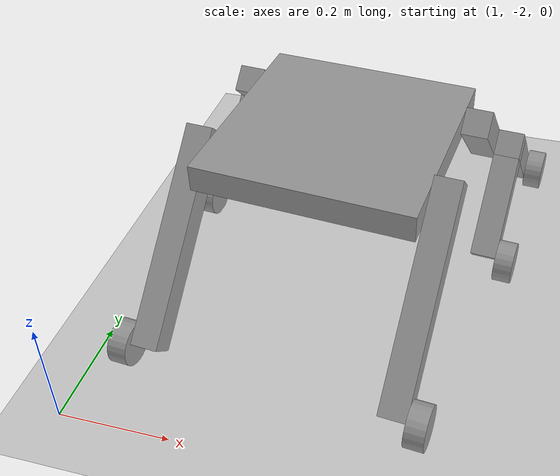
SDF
<sdf version="1.6">
 <world name="default">
  <model name="ground_plane">
   <static>1</static>
   <link name="link">
    <collision name="collision">
     <geometry><plane><normal>0 0 1</normal><size>100 100</size></plane></geometry>
     <surface><friction><ode><mu>100</mu><mu2>50</mu2></ode></friction></surface>
    </collision>
    <visual name="visual">
     <cast_shadows>0</cast_shadows>
     <geometry><plane><normal>0 0 1</normal><size>100 100</size></plane></geometry>
     <material>
      <script><uri>file://media/materials/scripts/gazebo.material</uri><name>Gazebo/Grey</name></script>
     </material>
    </visual>
   </link>
  </model>
  <model name="robot_1_0">
   <link name="link_0_clone">
    <inertial>
     <mass>1</mass>
     <inertia>
      <ixx>0.166667</ixx>
      <ixy>0</ixy>
      <ixz>0</ixz>
      <iyy>0.166667</iyy>
      <iyz>0</iyz>
      <izz>0.166667</izz>
     </inertia>
    </inertial>
    <pose>-0.152134 0.868305 0 0 -0 0</pose>
    <visual name="visual">
     <geometry><box><size>0.4 0.4 0.05</size></box></geometry>
     <material>
      <lighting>1</lighting>
      <script><uri>file://media/materials/scripts/gazebo.material</uri><name>Gazebo/Grey</name></script>
      <shader type="vertex"><normal_map>__default__</normal_map></shader>
      <ambient>0.3 0.3 0.3 1</ambient>
      <diffuse>0.7 0.7 0.7 1</diffuse>
      <specular>0.01 0.01 0.01 1</specular>
      <emissive>0 0 0 1</emissive>
     </material>
    </visual>
    <collision name="collision">
     <geometry><box><size>0.4 0.4 0.05</size></box></geometry>
     <surface>
      <friction>
       <ode><mu>1</mu><mu2>1</mu2><fdir1>0 0 0</fdir1><slip1>0</slip1><slip2>0</slip2></ode>
       <torsional>
        <coefficient>1</coefficient>
        <patch_radius>0</patch_radius>
        <surface_radius>0</surface_radius>
        <use_patch_radius>1</use_patch_radius>
        <ode><slip>0</slip></ode>
       </torsional>
      </friction>
      <bounce><restitution_coefficient>0</restitution_coefficient><threshold>1e+06</threshold></bounce>
      <contact>
       <collide_without_contact>0</collide_without_contact>
       <collide_without_contact_bitmask>1</collide_without_contact_bitmask>
       <collide_bitmask>1</collide_bitmask>
       <ode>
        <soft_cfm>0</soft_cfm>
        <soft_erp>0.2</soft_erp>
        <kp>1e+13</kp>
        <kd>1</kd>
        <max_vel>0.01</max_vel>
        <min_depth>0</min_depth>
       </ode>
       <bullet>
        <split_impulse>1</split_impulse>
        <split_impulse_penetration_threshold>-0.01</split_impulse_penetration_threshold>
        <soft_cfm>0</soft_cfm>
        <soft_erp>0.2</soft_erp>
        <kp>1e+13</kp>
        <kd>1</kd>
       </bullet>
      </contact>
     </surface>
    </collision>
   </link>
   <link name="link_0_clone_0">
    <inertial>
     <mass>1</mass>
     <inertia><ixx>0.145833</ixx><ixy>0</ixy><ixz>0</ixz><iyy>0.145833</iyy><iyz>0</iyz><izz>0.125</izz></inertia>
    </inertial>
    <pose>-0.469634 1.26045 -0.272118 -1.565 1.55233 -1.56544</pose>
    <visual name="visual">
     <geometry><cylinder><radius>0.04</radius><length>0.035</length></cylinder></geometry>
     <material>
      <lighting>1</lighting>
      <script><uri>file://media/materials/scripts/gazebo.material</uri><name>Gazebo/Grey</name></script>
      <shader type="vertex"><normal_map>__default__</normal_map></shader>
      <ambient>0.3 0.3 0.3 1</ambient>
      <diffuse>0.7 0.7 0.7 1</diffuse>
      <specular>0.01 0.01 0.01 1</specular>
      <emissive>0 0 0 1</emissive>
     </material>
    </visual>
    <collision name="collision">
     <geometry><cylinder><radius>0.04</radius><length>0.035</length></cylinder></geometry>
     <surface>
      <friction>
       <ode><mu>1</mu><mu2>1</mu2><fdir1>0 0 0</fdir1><slip1>0</slip1><slip2>0</slip2></ode>
       <torsional>
        <coefficient>1</coefficient>
        <patch_radius>0</patch_radius>
        <surface_radius>0</surface_radius>
        <use_patch_radius>1</use_patch_radius>
        <ode><slip>0</slip></ode>
       </torsional>
      </friction>
      <bounce><restitution_coefficient>0</restitution_coefficient><threshold>1e+06</threshold></bounce>
      <contact>
       <collide_without_contact>0</collide_without_contact>
       <collide_without_contact_bitmask>1</collide_without_contact_bitmask>
       <collide_bitmask>1</collide_bitmask>
       <ode>
        <soft_cfm>0</soft_cfm>
        <soft_erp>0.2</soft_erp>
        <kp>1e+13</kp>
        <kd>1</kd>
        <max_vel>0.01</max_vel>
        <min_depth>0</min_depth>
       </ode>
       <bullet>
        <split_impulse>1</split_impulse>
        <split_impulse_penetration_threshold>-0.01</split_impulse_penetration_threshold>
        <soft_cfm>0</soft_cfm>
        <soft_erp>0.2</soft_erp>
        <kp>1e+13</kp>
        <kd>1</kd>
       </bullet>
      </contact>
     </surface>
    </collision>
   </link>
   <link name="link_0_clone_1">
    <inertial>
     <mass>1</mass>
     <inertia><ixx>0.145833</ixx><ixy>0</ixy><ixz>0</ixz><iyy>0.145833</iyy><iyz>0</iyz><izz>0.125</izz></inertia>
    </inertial>
    <pose>-0.469634 0.942191 -0.272047 -1.565 1.55233 -1.56544</pose>
    <visual name="visual">
     <geometry><cylinder><radius>0.04</radius><length>0.035</length></cylinder></geometry>
     <material>
      <lighting>1</lighting>
      <script><uri>file://media/materials/scripts/gazebo.material</uri><name>Gazebo/Grey</name></script>
      <shader type="vertex"><normal_map>__default__</normal_map></shader>
      <ambient>0.3 0.3 0.3 1</ambient>
      <diffuse>0.7 0.7 0.7 1</diffuse>
      <specular>0.01 0.01 0.01 1</specular>
      <emissive>0 0 0 1</emissive>
     </material>
    </visual>
    <collision name="collision">
     <geometry><cylinder><radius>0.04</radius><length>0.035</length></cylinder></geometry>
     <surface>
      <friction>
       <ode><mu>1</mu><mu2>1</mu2><fdir1>0 0 0</fdir1><slip1>0</slip1><slip2>0</slip2></ode>
       <torsional>
        <coefficient>1</coefficient>
        <patch_radius>0</patch_radius>
        <surface_radius>0</surface_radius>
        <use_patch_radius>1</use_patch_radius>
        <ode><slip>0</slip></ode>
       </torsional>
      </friction>
      <bounce><restitution_coefficient>0</restitution_coefficient><threshold>1e+06</threshold></bounce>
      <contact>
       <collide_without_contact>0</collide_without_contact>
       <collide_without_contact_bitmask>1</collide_without_contact_bitmask>
       <collide_bitmask>1</collide_bitmask>
       <ode>
        <soft_cfm>0</soft_cfm>
        <soft_erp>0.2</soft_erp>
        <kp>1e+13</kp>
        <kd>1</kd>
        <max_vel>0.01</max_vel>
        <min_depth>0</min_depth>
       </ode>
       <bullet>
        <split_impulse>1</split_impulse>
        <split_impulse_penetration_threshold>-0.01</split_impulse_penetration_threshold>
        <soft_cfm>0</soft_cfm>
        <soft_erp>0.2</soft_erp>
        <kp>1e+13</kp>
        <kd>1</kd>
       </bullet>
      </contact>
     </surface>
    </collision>
   </link>
   <link name="link_0_clone_2">
    <inertial>
     <mass>1</mass>
     <inertia><ixx>0.145833</ixx><ixy>0</ixy><ixz>0</ixz><iyy>0.145833</iyy><iyz>0</iyz><izz>0.125</izz></inertia>
    </inertial>
    <pose>0.165366 1.26045 -0.272118 -1.56501 1.55233 -1.56545</pose>
    <visual name="visual">
     <geometry><cylinder><radius>0.04</radius><length>0.035</length></cylinder></geometry>
     <material>
      <lighting>1</lighting>
      <script><uri>file://media/materials/scripts/gazebo.material</uri><name>Gazebo/Grey</name></script>
      <shader type="vertex"><normal_map>__default__</normal_map></shader>
      <ambient>0.3 0.3 0.3 1</ambient>
      <diffuse>0.7 0.7 0.7 1</diffuse>
      <specular>0.01 0.01 0.01 1</specular>
      <emissive>0 0 0 1</emissive>
     </material>
    </visual>
    <collision name="collision">
     <geometry><cylinder><radius>0.04</radius><length>0.035</length></cylinder></geometry>
     <surface>
      <friction>
       <ode><mu>1</mu><mu2>1</mu2><fdir1>0 0 0</fdir1><slip1>0</slip1><slip2>0</slip2></ode>
       <torsional>
        <coefficient>1</coefficient>
        <patch_radius>0</patch_radius>
        <surface_radius>0</surface_radius>
        <use_patch_radius>1</use_patch_radius>
        <ode><slip>0</slip></ode>
       </torsional>
      </friction>
      <bounce><restitution_coefficient>0</restitution_coefficient><threshold>1e+06</threshold></bounce>
      <contact>
       <collide_without_contact>0</collide_without_contact>
       <collide_without_contact_bitmask>1</collide_without_contact_bitmask>
       <collide_bitmask>1</collide_bitmask>
       <ode>
        <soft_cfm>0</soft_cfm>
        <soft_erp>0.2</soft_erp>
        <kp>1e+13</kp>
        <kd>1</kd>
        <max_vel>0.01</max_vel>
        <min_depth>0</min_depth>
       </ode>
       <bullet>
        <split_impulse>1</split_impulse>
        <split_impulse_penetration_threshold>-0.01</split_impulse_penetration_threshold>
        <soft_cfm>0</soft_cfm>
        <soft_erp>0.2</soft_erp>
        <kp>1e+13</kp>
        <kd>1</kd>
       </bullet>
      </contact>
     </surface>
    </collision>
   </link>
   <link name="link_0_clone_3">
    <inertial>
     <mass>1</mass>
     <inertia><ixx>0.145833</ixx><ixy>0</ixy><ixz>0</ixz><iyy>0.145833</iyy><iyz>0</iyz><izz>0.125</izz></inertia>
    </inertial>
    <pose>-0.419634 0.501827 -0.261365 -1.565 1.55233 -1.56544</pose>
    <visual name="visual">
     <geometry><cylinder><radius>0.04</radius><length>0.035</length></cylinder></geometry>
     <material>
      <lighting>1</lighting>
      <script><uri>file://media/materials/scripts/gazebo.material</uri><name>Gazebo/Grey</name></script>
      <shader type="vertex"><normal_map>__default__</normal_map></shader>
      <ambient>0.3 0.3 0.3 1</ambient>
      <diffuse>0.7 0.7 0.7 1</diffuse>
      <specular>0.01 0.01 0.01 1</specular>
      <emissive>0 0 0 1</emissive>
     </material>
    </visual>
    <collision name="collision">
     <geometry><cylinder><radius>0.04</radius><length>0.035</length></cylinder></geometry>
     <surface>
      <friction>
       <ode><mu>1</mu><mu2>1</mu2><fdir1>0 0 0</fdir1><slip1>0</slip1><slip2>0</slip2></ode>
       <torsional>
        <coefficient>1</coefficient>
        <patch_radius>0</patch_radius>
        <surface_radius>0</surface_radius>
        <use_patch_radius>1</use_patch_radius>
        <ode><slip>0</slip></ode>
       </torsional>
      </friction>
      <bounce><restitution_coefficient>0</restitution_coefficient><threshold>1e+06</threshold></bounce>
      <contact>
       <collide_without_contact>0</collide_without_contact>
       <collide_without_contact_bitmask>1</collide_without_contact_bitmask>
       <collide_bitmask>1</collide_bitmask>
       <ode>
        <soft_cfm>0</soft_cfm>
        <soft_erp>0.2</soft_erp>
        <kp>1e+13</kp>
        <kd>1</kd>
        <max_vel>0.01</max_vel>
        <min_depth>0</min_depth>
       </ode>
       <bullet>
        <split_impulse>1</split_impulse>
        <split_impulse_penetration_threshold>-0.01</split_impulse_penetration_threshold>
        <soft_cfm>0</soft_cfm>
        <soft_erp>0.2</soft_erp>
        <kp>1e+13</kp>
        <kd>1</kd>
       </bullet>
      </contact>
     </surface>
    </collision>
   </link>
   <link name="link_0_clone_4">
    <inertial>
     <mass>1</mass>
     <inertia><ixx>0.145833</ixx><ixy>0</ixy><ixz>0</ixz><iyy>0.145833</iyy><iyz>0</iyz><izz>0.125</izz></inertia>
    </inertial>
    <pose>0.165366 0.942191 -0.272048 -1.565 1.55233 -1.56544</pose>
    <visual name="visual">
     <geometry><cylinder><radius>0.04</radius><length>0.035</length></cylinder></geometry>
     <material>
      <lighting>1</lighting>
      <script><uri>file://media/materials/scripts/gazebo.material</uri><name>Gazebo/Grey</name></script>
      <shader type="vertex"><normal_map>__default__</normal_map></shader>
      <ambient>0.3 0.3 0.3 1</ambient>
      <diffuse>0.7 0.7 0.7 1</diffuse>
      <specular>0.01 0.01 0.01 1</specular>
      <emissive>0 0 0 1</emissive>
     </material>
    </visual>
    <collision name="collision">
     <geometry><cylinder><radius>0.04</radius><length>0.035</length></cylinder></geometry>
     <surface>
      <friction>
       <ode><mu>1</mu><mu2>1</mu2><fdir1>0 0 0</fdir1><slip1>0</slip1><slip2>0</slip2></ode>
       <torsional>
        <coefficient>1</coefficient>
        <patch_radius>0</patch_radius>
        <surface_radius>0</surface_radius>
        <use_patch_radius>1</use_patch_radius>
        <ode><slip>0</slip></ode>
       </torsional>
      </friction>
      <bounce><restitution_coefficient>0</restitution_coefficient><threshold>1e+06</threshold></bounce>
      <contact>
       <collide_without_contact>0</collide_without_contact>
       <collide_without_contact_bitmask>1</collide_without_contact_bitmask>
       <collide_bitmask>1</collide_bitmask>
       <ode>
        <soft_cfm>0</soft_cfm>
        <soft_erp>0.2</soft_erp>
        <kp>1e+13</kp>
        <kd>1</kd>
        <max_vel>0.01</max_vel>
        <min_depth>0</min_depth>
       </ode>
       <bullet>
        <split_impulse>1</split_impulse>
        <split_impulse_penetration_threshold>-0.01</split_impulse_penetration_threshold>
        <soft_cfm>0</soft_cfm>
        <soft_erp>0.2</soft_erp>
        <kp>1e+13</kp>
        <kd>1</kd>
       </bullet>
      </contact>
     </surface>
    </collision>
   </link>
   <link name="link_0_clone_5">
    <inertial>
     <mass>1</mass>
     <inertia><ixx>0.145833</ixx><ixy>0</ixy><ixz>0</ixz><iyy>0.145833</iyy><iyz>0</iyz><izz>0.125</izz></inertia>
    </inertial>
    <pose>0.115366 0.501827 -0.261365 -1.565 1.55233 -1.56544</pose>
    <visual name="visual">
     <geometry><cylinder><radius>0.04</radius><length>0.035</length></cylinder></geometry>
     <material>
      <lighting>1</lighting>
      <script><uri>file://media/materials/scripts/gazebo.material</uri><name>Gazebo/Grey</name></script>
      <shader type="vertex"><normal_map>__default__</normal_map></shader>
      <ambient>0.3 0.3 0.3 1</ambient>
      <diffuse>0.7 0.7 0.7 1</diffuse>
      <specular>0.01 0.01 0.01 1</specular>
      <emissive>0 0 0 1</emissive>
     </material>
    </visual>
    <collision name="collision">
     <geometry><cylinder><radius>0.04</radius><length>0.035</length></cylinder></geometry>
     <surface>
      <friction>
       <ode><mu>1</mu><mu2>1</mu2><fdir1>0 0 0</fdir1><slip1>0</slip1><slip2>0</slip2></ode>
       <torsional>
        <coefficient>1</coefficient>
        <patch_radius>0</patch_radius>
        <surface_radius>0</surface_radius>
        <use_patch_radius>1</use_patch_radius>
        <ode><slip>0</slip></ode>
       </torsional>
      </friction>
      <bounce><restitution_coefficient>0</restitution_coefficient><threshold>1e+06</threshold></bounce>
      <contact>
       <collide_without_contact>0</collide_without_contact>
       <collide_without_contact_bitmask>1</collide_without_contact_bitmask>
       <collide_bitmask>1</collide_bitmask>
       <ode>
        <soft_cfm>0</soft_cfm>
        <soft_erp>0.2</soft_erp>
        <kp>1e+13</kp>
        <kd>1</kd>
        <max_vel>0.01</max_vel>
        <min_depth>0</min_depth>
       </ode>
       <bullet>
        <split_impulse>1</split_impulse>
        <split_impulse_penetration_threshold>-0.01</split_impulse_penetration_threshold>
        <soft_cfm>0</soft_cfm>
        <soft_erp>0.2</soft_erp>
        <kp>1e+13</kp>
        <kd>1</kd>
       </bullet>
      </contact>
     </surface>
    </collision>
   </link>
   <link name="link_1_clone">
    <inertial>
     <mass>1</mass>
     <inertia>
      <ixx>0.166667</ixx>
      <ixy>0</ixy>
      <ixz>0</ixz>
      <iyy>0.166667</iyy>
      <iyz>0</iyz>
      <izz>0.166667</izz>
     </inertia>
    </inertial>
    <pose>0.072866 0.643305 -0.12 0.785 -0 0</pose>
    <visual name="visual">
     <geometry><box><size>0.05 0.4 0.05</size></box></geometry>
     <material>
      <lighting>1</lighting>
      <script><uri>file://media/materials/scripts/gazebo.material</uri><name>Gazebo/Grey</name></script>
      <shader type="vertex"><normal_map>__default__</normal_map></shader>
      <ambient>0.3 0.3 0.3 1</ambient>
      <diffuse>0.7 0.7 0.7 1</diffuse>
      <specular>0.01 0.01 0.01 1</specular>
      <emissive>0 0 0 1</emissive>
     </material>
    </visual>
    <collision name="collision">
     <geometry><box><size>0.05 0.4 0.05</size></box></geometry>
     <surface>
      <friction>
       <ode><mu>1</mu><mu2>1</mu2><fdir1>0 0 0</fdir1><slip1>0</slip1><slip2>0</slip2></ode>
       <torsional>
        <coefficient>1</coefficient>
        <patch_radius>0</patch_radius>
        <surface_radius>0</surface_radius>
        <use_patch_radius>1</use_patch_radius>
        <ode><slip>0</slip></ode>
       </torsional>
      </friction>
      <bounce><restitution_coefficient>0</restitution_coefficient><threshold>1e+06</threshold></bounce>
      <contact>
       <collide_without_contact>0</collide_without_contact>
       <collide_without_contact_bitmask>1</collide_without_contact_bitmask>
       <collide_bitmask>1</collide_bitmask>
       <ode>
        <soft_cfm>0</soft_cfm>
        <soft_erp>0.2</soft_erp>
        <kp>1e+13</kp>
        <kd>1</kd>
        <max_vel>0.01</max_vel>
        <min_depth>0</min_depth>
       </ode>
       <bullet>
        <split_impulse>1</split_impulse>
        <split_impulse_penetration_threshold>-0.01</split_impulse_penetration_threshold>
        <soft_cfm>0</soft_cfm>
        <soft_erp>0.2</soft_erp>
        <kp>1e+13</kp>
        <kd>1</kd>
       </bullet>
      </contact>
     </surface>
    </collision>
   </link>
   <link name="link_1_clone_0">
    <inertial>
     <mass>1</mass>
     <inertia>
      <ixx>0.166667</ixx>
      <ixy>0</ixy>
      <ixz>0</ixz>
      <iyy>0.166667</iyy>
      <iyz>0</iyz>
      <izz>0.166667</izz>
     </inertia>
    </inertial>
    <pose>-0.377134 0.643305 -0.12 0.785 -0 0</pose>
    <visual name="visual">
     <geometry><box><size>0.05 0.4 0.05</size></box></geometry>
     <material>
      <lighting>1</lighting>
      <script><uri>file://media/materials/scripts/gazebo.material</uri><name>Gazebo/Grey</name></script>
      <shader type="vertex"><normal_map>__default__</normal_map></shader>
      <ambient>0.3 0.3 0.3 1</ambient>
      <diffuse>0.7 0.7 0.7 1</diffuse>
      <specular>0.01 0.01 0.01 1</specular>
      <emissive>0 0 0 1</emissive>
     </material>
    </visual>
    <collision name="collision">
     <geometry><box><size>0.05 0.4 0.05</size></box></geometry>
     <surface>
      <friction>
       <ode><mu>1</mu><mu2>1</mu2><fdir1>0 0 0</fdir1><slip1>0</slip1><slip2>0</slip2></ode>
       <torsional>
        <coefficient>1</coefficient>
        <patch_radius>0</patch_radius>
        <surface_radius>0</surface_radius>
        <use_patch_radius>1</use_patch_radius>
        <ode><slip>0</slip></ode>
       </torsional>
      </friction>
      <bounce><restitution_coefficient>0</restitution_coefficient><threshold>1e+06</threshold></bounce>
      <contact>
       <collide_without_contact>0</collide_without_contact>
       <collide_without_contact_bitmask>1</collide_without_contact_bitmask>
       <collide_bitmask>1</collide_bitmask>
       <ode>
        <soft_cfm>0</soft_cfm>
        <soft_erp>0.2</soft_erp>
        <kp>1e+13</kp>
        <kd>1</kd>
        <max_vel>0.01</max_vel>
        <min_depth>0</min_depth>
       </ode>
       <bullet>
        <split_impulse>1</split_impulse>
        <split_impulse_penetration_threshold>-0.01</split_impulse_penetration_threshold>
        <soft_cfm>0</soft_cfm>
        <soft_erp>0.2</soft_erp>
        <kp>1e+13</kp>
        <kd>1</kd>
       </bullet>
      </contact>
     </surface>
    </collision>
   </link>
   <link name="link_1_clone_1">
    <inertial>
     <mass>1</mass>
     <inertia>
      <ixx>0.166667</ixx>
      <ixy>0</ixy>
      <ixz>0</ixz>
      <iyy>0.166667</iyy>
      <iyz>0</iyz>
      <izz>0.166667</izz>
     </inertia>
    </inertial>
    <pose>-0.427134 1.01293 -0.201365 0.785 -0 0</pose>
    <visual name="visual">
     <geometry><box><size>0.05 0.2 0.05</size></box></geometry>
     <material>
      <lighting>1</lighting>
      <script><uri>file://media/materials/scripts/gazebo.material</uri><name>Gazebo/Grey</name></script>
      <shader type="vertex"><normal_map>__default__</normal_map></shader>
      <ambient>0.3 0.3 0.3 1</ambient>
      <diffuse>0.7 0.7 0.7 1</diffuse>
      <specular>0.01 0.01 0.01 1</specular>
      <emissive>0 0 0 1</emissive>
     </material>
    </visual>
    <collision name="collision">
     <geometry><box><size>0.05 0.2 0.05</size></box></geometry>
     <surface>
      <friction>
       <ode><mu>1</mu><mu2>1</mu2><fdir1>0 0 0</fdir1><slip1>0</slip1><slip2>0</slip2></ode>
       <torsional>
        <coefficient>1</coefficient>
        <patch_radius>0</patch_radius>
        <surface_radius>0</surface_radius>
        <use_patch_radius>1</use_patch_radius>
        <ode><slip>0</slip></ode>
       </torsional>
      </friction>
      <bounce><restitution_coefficient>0</restitution_coefficient><threshold>1e+06</threshold></bounce>
      <contact>
       <collide_without_contact>0</collide_without_contact>
       <collide_without_contact_bitmask>1</collide_without_contact_bitmask>
       <collide_bitmask>1</collide_bitmask>
       <ode>
        <soft_cfm>0</soft_cfm>
        <soft_erp>0.2</soft_erp>
        <kp>1e+13</kp>
        <kd>1</kd>
        <max_vel>0.01</max_vel>
        <min_depth>0</min_depth>
       </ode>
       <bullet>
        <split_impulse>1</split_impulse>
        <split_impulse_penetration_threshold>-0.01</split_impulse_penetration_threshold>
        <soft_cfm>0</soft_cfm>
        <soft_erp>0.2</soft_erp>
        <kp>1e+13</kp>
        <kd>1</kd>
       </bullet>
      </contact>
     </surface>
    </collision>
   </link>
   <link name="link_1_clone_2">
    <inertial>
     <mass>1</mass>
     <inertia>
      <ixx>0.166667</ixx>
      <ixy>0</ixy>
      <ixz>0</ixz>
      <iyy>0.166667</iyy>
      <iyz>0</iyz>
      <izz>0.166667</izz>
     </inertia>
    </inertial>
    <pose>0.122866 1.01293 -0.201365 0.785 -0 0</pose>
    <visual name="visual">
     <geometry><box><size>0.05 0.2 0.05</size></box></geometry>
     <material>
      <lighting>1</lighting>
      <script><uri>file://media/materials/scripts/gazebo.material</uri><name>Gazebo/Grey</name></script>
      <shader type="vertex"><normal_map>__default__</normal_map></shader>
      <ambient>0.3 0.3 0.3 1</ambient>
      <diffuse>0.7 0.7 0.7 1</diffuse>
      <specular>0.01 0.01 0.01 1</specular>
      <emissive>0 0 0 1</emissive>
     </material>
    </visual>
    <collision name="collision">
     <geometry><box><size>0.05 0.2 0.05</size></box></geometry>
     <surface>
      <friction>
       <ode><mu>1</mu><mu2>1</mu2><fdir1>0 0 0</fdir1><slip1>0</slip1><slip2>0</slip2></ode>
       <torsional>
        <coefficient>1</coefficient>
        <patch_radius>0</patch_radius>
        <surface_radius>0</surface_radius>
        <use_patch_radius>1</use_patch_radius>
        <ode><slip>0</slip></ode>
       </torsional>
      </friction>
      <bounce><restitution_coefficient>0</restitution_coefficient><threshold>1e+06</threshold></bounce>
      <contact>
       <collide_without_contact>0</collide_without_contact>
       <collide_without_contact_bitmask>1</collide_without_contact_bitmask>
       <collide_bitmask>1</collide_bitmask>
       <ode>
        <soft_cfm>0</soft_cfm>
        <soft_erp>0.2</soft_erp>
        <kp>1e+13</kp>
        <kd>1</kd>
        <max_vel>0.01</max_vel>
        <min_depth>0</min_depth>
       </ode>
       <bullet>
        <split_impulse>1</split_impulse>
        <split_impulse_penetration_threshold>-0.01</split_impulse_penetration_threshold>
        <soft_cfm>0</soft_cfm>
        <soft_erp>0.2</soft_erp>
        <kp>1e+13</kp>
        <kd>1</kd>
       </bullet>
      </contact>
     </surface>
    </collision>
   </link>
   <link name="link_1_clone_3">
    <inertial>
     <mass>1</mass>
     <inertia>
      <ixx>0.166667</ixx>
      <ixy>0</ixy>
      <ixz>0</ixz>
      <iyy>0.166667</iyy>
      <iyz>0</iyz>
      <izz>0.166667</izz>
     </inertia>
    </inertial>
    <pose>-0.427134 1.18971 -0.201435 -0.785 -0 -0</pose>
    <visual name="visual">
     <geometry><box><size>0.05 0.2 0.05</size></box></geometry>
     <material>
      <lighting>1</lighting>
      <script><uri>file://media/materials/scripts/gazebo.material</uri><name>Gazebo/Grey</name></script>
      <shader type="vertex"><normal_map>__default__</normal_map></shader>
      <ambient>0.3 0.3 0.3 1</ambient>
      <diffuse>0.7 0.7 0.7 1</diffuse>
      <specular>0.01 0.01 0.01 1</specular>
      <emissive>0 0 0 1</emissive>
     </material>
    </visual>
    <collision name="collision">
     <geometry><box><size>0.05 0.2 0.05</size></box></geometry>
     <surface>
      <friction>
       <ode><mu>1</mu><mu2>1</mu2><fdir1>0 0 0</fdir1><slip1>0</slip1><slip2>0</slip2></ode>
       <torsional>
        <coefficient>1</coefficient>
        <patch_radius>0</patch_radius>
        <surface_radius>0</surface_radius>
        <use_patch_radius>1</use_patch_radius>
        <ode><slip>0</slip></ode>
       </torsional>
      </friction>
      <bounce><restitution_coefficient>0</restitution_coefficient><threshold>1e+06</threshold></bounce>
      <contact>
       <collide_without_contact>0</collide_without_contact>
       <collide_without_contact_bitmask>1</collide_without_contact_bitmask>
       <collide_bitmask>1</collide_bitmask>
       <ode>
        <soft_cfm>0</soft_cfm>
        <soft_erp>0.2</soft_erp>
        <kp>1e+13</kp>
        <kd>1</kd>
        <max_vel>0.01</max_vel>
        <min_depth>0</min_depth>
       </ode>
       <bullet>
        <split_impulse>1</split_impulse>
        <split_impulse_penetration_threshold>-0.01</split_impulse_penetration_threshold>
        <soft_cfm>0</soft_cfm>
        <soft_erp>0.2</soft_erp>
        <kp>1e+13</kp>
        <kd>1</kd>
       </bullet>
      </contact>
     </surface>
    </collision>
   </link>
   <link name="link_1_clone_3_clone">
    <inertial>
     <mass>1</mass>
     <inertia>
      <ixx>0.166667</ixx>
      <ixy>0</ixy>
      <ixz>0</ixz>
      <iyy>0.166667</iyy>
      <iyz>0</iyz>
      <izz>0.166667</izz>
     </inertia>
    </inertial>
    <pose>-0.377134 1.04831 -0.06 -0.785 -0 -0</pose>
    <visual name="visual">
     <geometry><box><size>0.05 0.2 0.05</size></box></geometry>
     <material>
      <lighting>1</lighting>
      <script><uri>file://media/materials/scripts/gazebo.material</uri><name>Gazebo/Grey</name></script>
      <shader type="vertex"><normal_map>__default__</normal_map></shader>
      <ambient>0.3 0.3 0.3 1</ambient>
      <diffuse>0.7 0.7 0.7 1</diffuse>
      <specular>0.01 0.01 0.01 1</specular>
      <emissive>0 0 0 1</emissive>
     </material>
    </visual>
    <collision name="collision">
     <geometry><box><size>0.05 0.2 0.05</size></box></geometry>
     <surface>
      <friction>
       <ode><mu>1</mu><mu2>1</mu2><fdir1>0 0 0</fdir1><slip1>0</slip1><slip2>0</slip2></ode>
       <torsional>
        <coefficient>1</coefficient>
        <patch_radius>0</patch_radius>
        <surface_radius>0</surface_radius>
        <use_patch_radius>1</use_patch_radius>
        <ode><slip>0</slip></ode>
       </torsional>
      </friction>
      <bounce><restitution_coefficient>0</restitution_coefficient><threshold>1e+06</threshold></bounce>
      <contact>
       <collide_without_contact>0</collide_without_contact>
       <collide_without_contact_bitmask>1</collide_without_contact_bitmask>
       <collide_bitmask>1</collide_bitmask>
       <ode>
        <soft_cfm>0</soft_cfm>
        <soft_erp>0.2</soft_erp>
        <kp>1e+13</kp>
        <kd>1</kd>
        <max_vel>0.01</max_vel>
        <min_depth>0</min_depth>
       </ode>
       <bullet>
        <split_impulse>1</split_impulse>
        <split_impulse_penetration_threshold>-0.01</split_impulse_penetration_threshold>
        <soft_cfm>0</soft_cfm>
        <soft_erp>0.2</soft_erp>
        <kp>1e+13</kp>
        <kd>1</kd>
       </bullet>
      </contact>
     </surface>
    </collision>
   </link>
   <link name="link_1_clone_3_clone_clone">
    <inertial>
     <mass>1</mass>
     <inertia>
      <ixx>0.166667</ixx>
      <ixy>0</ixy>
      <ixz>0</ixz>
      <iyy>0.166667</iyy>
      <iyz>0</iyz>
      <izz>0.166667</izz>
     </inertia>
    </inertial>
    <pose>0.072866 1.04831 -0.06 -0.785 -0 -0</pose>
    <visual name="visual">
     <geometry><box><size>0.05 0.2 0.05</size></box></geometry>
     <material>
      <lighting>1</lighting>
      <script><uri>file://media/materials/scripts/gazebo.material</uri><name>Gazebo/Grey</name></script>
      <shader type="vertex"><normal_map>__default__</normal_map></shader>
      <ambient>0.3 0.3 0.3 1</ambient>
      <diffuse>0.7 0.7 0.7 1</diffuse>
      <specular>0.01 0.01 0.01 1</specular>
      <emissive>0 0 0 1</emissive>
     </material>
    </visual>
    <collision name="collision">
     <geometry><box><size>0.05 0.2 0.05</size></box></geometry>
     <surface>
      <friction>
       <ode><mu>1</mu><mu2>1</mu2><fdir1>0 0 0</fdir1><slip1>0</slip1><slip2>0</slip2></ode>
       <torsional>
        <coefficient>1</coefficient>
        <patch_radius>0</patch_radius>
        <surface_radius>0</surface_radius>
        <use_patch_radius>1</use_patch_radius>
        <ode><slip>0</slip></ode>
       </torsional>
      </friction>
      <bounce><restitution_coefficient>0</restitution_coefficient><threshold>1e+06</threshold></bounce>
      <contact>
       <collide_without_contact>0</collide_without_contact>
       <collide_without_contact_bitmask>1</collide_without_contact_bitmask>
       <collide_bitmask>1</collide_bitmask>
       <ode>
        <soft_cfm>0</soft_cfm>
        <soft_erp>0.2</soft_erp>
        <kp>1e+13</kp>
        <kd>1</kd>
        <max_vel>0.01</max_vel>
        <min_depth>0</min_depth>
       </ode>
       <bullet>
        <split_impulse>1</split_impulse>
        <split_impulse_penetration_threshold>-0.01</split_impulse_penetration_threshold>
        <soft_cfm>0</soft_cfm>
        <soft_erp>0.2</soft_erp>
        <kp>1e+13</kp>
        <kd>1</kd>
       </bullet>
      </contact>
     </surface>
    </collision>
   </link>
   <link name="link_1_clone_3_clone_clone_0">
    <inertial>
     <mass>1</mass>
     <inertia>
      <ixx>0.166667</ixx>
      <ixy>0</ixy>
      <ixz>0</ixz>
      <iyy>0.166667</iyy>
      <iyz>0</iyz>
      <izz>0.166667</izz>
     </inertia>
    </inertial>
    <pose>0.122866 1.18971 -0.201435 -0.785 -0 -0</pose>
    <visual name="visual">
     <geometry><box><size>0.05 0.2 0.05</size></box></geometry>
     <material>
      <lighting>1</lighting>
      <script><uri>file://media/materials/scripts/gazebo.material</uri><name>Gazebo/Grey</name></script>
      <shader type="vertex"><normal_map>__default__</normal_map></shader>
      <ambient>0.3 0.3 0.3 1</ambient>
      <diffuse>0.7 0.7 0.7 1</diffuse>
      <specular>0.01 0.01 0.01 1</specular>
      <emissive>0 0 0 1</emissive>
     </material>
    </visual>
    <collision name="collision">
     <geometry><box><size>0.05 0.2 0.05</size></box></geometry>
     <surface>
      <friction>
       <ode><mu>1</mu><mu2>1</mu2><fdir1>0 0 0</fdir1><slip1>0</slip1><slip2>0</slip2></ode>
       <torsional>
        <coefficient>1</coefficient>
        <patch_radius>0</patch_radius>
        <surface_radius>0</surface_radius>
        <use_patch_radius>1</use_patch_radius>
        <ode><slip>0</slip></ode>
       </torsional>
      </friction>
      <bounce><restitution_coefficient>0</restitution_coefficient><threshold>1e+06</threshold></bounce>
      <contact>
       <collide_without_contact>0</collide_without_contact>
       <collide_without_contact_bitmask>1</collide_without_contact_bitmask>
       <collide_bitmask>1</collide_bitmask>
       <ode>
        <soft_cfm>0</soft_cfm>
        <soft_erp>0.2</soft_erp>
        <kp>1e+13</kp>
        <kd>1</kd>
        <max_vel>0.01</max_vel>
        <min_depth>0</min_depth>
       </ode>
       <bullet>
        <split_impulse>1</split_impulse>
        <split_impulse_penetration_threshold>-0.01</split_impulse_penetration_threshold>
        <soft_cfm>0</soft_cfm>
        <soft_erp>0.2</soft_erp>
        <kp>1e+13</kp>
        <kd>1</kd>
       </bullet>
      </contact>
     </surface>
    </collision>
   </link>
   <link name="link_2_clone">
    <inertial>
     <mass>1</mass>
     <inertia>
      <ixx>0.166667</ixx>
      <ixy>0</ixy>
      <ixz>0</ixz>
      <iyy>0.166667</iyy>
      <iyz>0</iyz>
      <izz>0.166667</izz>
     </inertia>
    </inertial>
    <pose>-0.427134 1.10136 -0.113012 0.785 -0 0</pose>
    <visual name="visual">
     <geometry><box><size>0.05 0.05 0.05</size></box></geometry>
     <material>
      <lighting>1</lighting>
      <script><uri>file://media/materials/scripts/gazebo.material</uri><name>Gazebo/Grey</name></script>
      <shader type="vertex"><normal_map>__default__</normal_map></shader>
      <ambient>0.3 0.3 0.3 1</ambient>
      <diffuse>0.7 0.7 0.7 1</diffuse>
      <specular>0.01 0.01 0.01 1</specular>
      <emissive>0 0 0 1</emissive>
     </material>
    </visual>
    <collision name="collision">
     <geometry><box><size>0.05 0.05 0.05</size></box></geometry>
     <surface>
      <friction>
       <ode><mu>1</mu><mu2>1</mu2><fdir1>0 0 0</fdir1><slip1>0</slip1><slip2>0</slip2></ode>
       <torsional>
        <coefficient>1</coefficient>
        <patch_radius>0</patch_radius>
        <surface_radius>0</surface_radius>
        <use_patch_radius>1</use_patch_radius>
        <ode><slip>0</slip></ode>
       </torsional>
      </friction>
      <bounce><restitution_coefficient>0</restitution_coefficient><threshold>1e+06</threshold></bounce>
      <contact>
       <collide_without_contact>0</collide_without_contact>
       <collide_without_contact_bitmask>1</collide_without_contact_bitmask>
       <collide_bitmask>1</collide_bitmask>
       <ode>
        <soft_cfm>0</soft_cfm>
        <soft_erp>0.2</soft_erp>
        <kp>1e+13</kp>
        <kd>1</kd>
        <max_vel>0.01</max_vel>
        <min_depth>0</min_depth>
       </ode>
       <bullet>
        <split_impulse>1</split_impulse>
        <split_impulse_penetration_threshold>-0.01</split_impulse_penetration_threshold>
        <soft_cfm>0</soft_cfm>
        <soft_erp>0.2</soft_erp>
        <kp>1e+13</kp>
        <kd>1</kd>
       </bullet>
      </contact>
     </surface>
    </collision>
   </link>
   <link name="link_2_clone_0">
    <inertial>
     <mass>1</mass>
     <inertia>
      <ixx>0.166667</ixx>
      <ixy>0</ixy>
      <ixz>0</ixz>
      <iyy>0.166667</iyy>
      <iyz>0</iyz>
      <izz>0.166667</izz>
     </inertia>
    </inertial>
    <pose>0.122866 1.10136 -0.113012 0.785 -0 0</pose>
    <visual name="visual">
     <geometry><box><size>0.05 0.05 0.05</size></box></geometry>
     <material>
      <lighting>1</lighting>
      <script><uri>file://media/materials/scripts/gazebo.material</uri><name>Gazebo/Grey</name></script>
      <shader type="vertex"><normal_map>__default__</normal_map></shader>
      <ambient>0.3 0.3 0.3 1</ambient>
      <diffuse>0.7 0.7 0.7 1</diffuse>
      <specular>0.01 0.01 0.01 1</specular>
      <emissive>0 0 0 1</emissive>
     </material>
    </visual>
    <collision name="collision">
     <geometry><box><size>0.05 0.05 0.05</size></box></geometry>
     <surface>
      <friction>
       <ode><mu>1</mu><mu2>1</mu2><fdir1>0 0 0</fdir1><slip1>0</slip1><slip2>0</slip2></ode>
       <torsional>
        <coefficient>1</coefficient>
        <patch_radius>0</patch_radius>
        <surface_radius>0</surface_radius>
        <use_patch_radius>1</use_patch_radius>
        <ode><slip>0</slip></ode>
       </torsional>
      </friction>
      <bounce><restitution_coefficient>0</restitution_coefficient><threshold>1e+06</threshold></bounce>
      <contact>
       <collide_without_contact>0</collide_without_contact>
       <collide_without_contact_bitmask>1</collide_without_contact_bitmask>
       <collide_bitmask>1</collide_bitmask>
       <ode>
        <soft_cfm>0</soft_cfm>
        <soft_erp>0.2</soft_erp>
        <kp>1e+13</kp>
        <kd>1</kd>
        <max_vel>0.01</max_vel>
        <min_depth>0</min_depth>
       </ode>
       <bullet>
        <split_impulse>1</split_impulse>
        <split_impulse_penetration_threshold>-0.01</split_impulse_penetration_threshold>
        <soft_cfm>0</soft_cfm>
        <soft_erp>0.2</soft_erp>
        <kp>1e+13</kp>
        <kd>1</kd>
       </bullet>
      </contact>
     </surface>
    </collision>
   </link>
   <joint name="link_0_clone_JOINT_0" type="fixed">
    <parent>link_0_clone</parent>
    <child>link_1_clone</child>
    <physics>
     <ode><limit><cfm>0</cfm><erp>0.2</erp></limit><suspension><cfm>0</cfm><erp>0.2</erp></suspension></ode>
    </physics>
   </joint>
   <joint name="link_0_clone_JOINT_1" type="fixed">
    <parent>link_0_clone</parent>
    <child>link_1_clone_0</child>
    <physics>
     <ode><limit><cfm>0</cfm><erp>0.2</erp></limit><suspension><cfm>0</cfm><erp>0.2</erp></suspension></ode>
    </physics>
   </joint>
   <joint name="link_0_clone_JOINT_2" type="fixed">
    <parent>link_0_clone</parent>
    <child>link_1_clone_3_clone_clone</child>
    <physics>
     <ode><limit><cfm>0</cfm><erp>0.2</erp></limit><suspension><cfm>0</cfm><erp>0.2</erp></suspension></ode>
    </physics>
   </joint>
   <joint name="link_0_clone_JOINT_3" type="fixed">
    <parent>link_0_clone</parent>
    <child>link_1_clone_3_clone</child>
    <physics>
     <ode><limit><cfm>0</cfm><erp>0.2</erp></limit><suspension><cfm>0</cfm><erp>0.2</erp></suspension></ode>
    </physics>
   </joint>
   <joint name="link_1_clone_0_JOINT_3" type="revolute">
    <parent>link_1_clone_0</parent>
    <child>link_0_clone_3</child>
    <axis>
     <xyz>0 0 1</xyz>
     <use_parent_model_frame>0</use_parent_model_frame>
     <limit>
      <lower>-1.79769e+308</lower>
      <upper>1.79769e+308</upper>
      <effort>-1</effort>
      <velocity>-1</velocity>
     </limit>
     <dynamics>
      <spring_reference>0</spring_reference>
      <spring_stiffness>0</spring_stiffness>
      <damping>0</damping>
     </dynamics>
    </axis>
    <physics>
     <ode><limit><cfm>0</cfm><erp>0.2</erp></limit><suspension><cfm>0</cfm><erp>0.2</erp></suspension></ode>
    </physics>
   </joint>
   <joint name="link_1_clone_1_JOINT_2" type="revolute">
    <parent>link_1_clone_1</parent>
    <child>link_0_clone_1</child>
    <axis>
     <xyz>0 0 1</xyz>
     <use_parent_model_frame>0</use_parent_model_frame>
     <limit>
      <lower>-1.79769e+308</lower>
      <upper>1.79769e+308</upper>
      <effort>-1</effort>
      <velocity>-1</velocity>
     </limit>
     <dynamics>
      <spring_reference>0</spring_reference>
      <spring_stiffness>0</spring_stiffness>
      <damping>0</damping>
     </dynamics>
    </axis>
    <physics>
     <ode><limit><cfm>0</cfm><erp>0.2</erp></limit><suspension><cfm>0</cfm><erp>0.2</erp></suspension></ode>
    </physics>
   </joint>
   <joint name="link_1_clone_2_JOINT_5" type="revolute">
    <parent>link_1_clone_2</parent>
    <child>link_0_clone_4</child>
    <axis>
     <xyz>0 0 1</xyz>
     <use_parent_model_frame>0</use_parent_model_frame>
     <limit>
      <lower>-1.79769e+308</lower>
      <upper>1.79769e+308</upper>
      <effort>-1</effort>
      <velocity>-1</velocity>
     </limit>
     <dynamics>
      <spring_reference>0</spring_reference>
      <spring_stiffness>0</spring_stiffness>
      <damping>0</damping>
     </dynamics>
    </axis>
    <physics>
     <ode><limit><cfm>0</cfm><erp>0.2</erp></limit><suspension><cfm>0</cfm><erp>0.2</erp></suspension></ode>
    </physics>
   </joint>
   <joint name="link_1_clone_3_JOINT_1" type="revolute">
    <parent>link_1_clone_3</parent>
    <child>link_0_clone_0</child>
    <axis>
     <xyz>0 0 1</xyz>
     <use_parent_model_frame>0</use_parent_model_frame>
     <limit>
      <lower>-1.79769e+308</lower>
      <upper>1.79769e+308</upper>
      <effort>-1</effort>
      <velocity>-1</velocity>
     </limit>
     <dynamics>
      <spring_reference>0</spring_reference>
      <spring_stiffness>0</spring_stiffness>
      <damping>0</damping>
     </dynamics>
    </axis>
    <physics>
     <ode><limit><cfm>0</cfm><erp>0.2</erp></limit><suspension><cfm>0</cfm><erp>0.2</erp></suspension></ode>
    </physics>
   </joint>
   <joint name="link_1_clone_3_clone_JOINT_0" type="revolute">
    <parent>link_1_clone_3_clone</parent>
    <child>link_2_clone</child>
    <axis>
     <xyz>1 0 0</xyz>
     <use_parent_model_frame>0</use_parent_model_frame>
     <limit>
      <lower>-1.79769e+308</lower>
      <upper>1.79769e+308</upper>
      <effort>-1</effort>
      <velocity>-1</velocity>
     </limit>
     <dynamics>
      <spring_reference>0</spring_reference>
      <spring_stiffness>0</spring_stiffness>
      <damping>0</damping>
      <friction>0</friction>
     </dynamics>
    </axis>
    <physics>
     <ode><limit><cfm>0</cfm><erp>0.2</erp></limit><suspension><cfm>0</cfm><erp>0.2</erp></suspension></ode>
    </physics>
   </joint>
   <joint name="link_1_clone_3_clone_clone_0_JOINT_6" type="revolute">
    <parent>link_1_clone_3_clone_clone_0</parent>
    <child>link_0_clone_2</child>
    <axis>
     <xyz>0 0 1</xyz>
     <use_parent_model_frame>0</use_parent_model_frame>
     <limit>
      <lower>-1.79769e+308</lower>
      <upper>1.79769e+308</upper>
      <effort>-1</effort>
      <velocity>-1</velocity>
     </limit>
     <dynamics>
      <spring_reference>0</spring_reference>
      <spring_stiffness>0</spring_stiffness>
      <damping>0</damping>
     </dynamics>
    </axis>
    <physics>
     <ode><limit><cfm>0</cfm><erp>0.2</erp></limit><suspension><cfm>0</cfm><erp>0.2</erp></suspension></ode>
    </physics>
   </joint>
   <joint name="link_1_clone_3_clone_clone_JOINT_4" type="revolute">
    <parent>link_1_clone_3_clone_clone</parent>
    <child>link_2_clone_0</child>
    <axis>
     <xyz>1 0 0</xyz>
     <use_parent_model_frame>0</use_parent_model_frame>
     <limit>
      <lower>-1.79769e+308</lower>
      <upper>1.79769e+308</upper>
      <effort>-1</effort>
      <velocity>-1</velocity>
     </limit>
     <dynamics>
      <spring_reference>0</spring_reference>
      <spring_stiffness>0</spring_stiffness>
      <damping>0</damping>
      <friction>0</friction>
     </dynamics>
    </axis>
    <physics>
     <ode><limit><cfm>0</cfm><erp>0.2</erp></limit><suspension><cfm>0</cfm><erp>0.2</erp></suspension></ode>
    </physics>
   </joint>
   <joint name="link_1_clone_JOINT_4" type="revolute">
    <parent>link_1_clone</parent>
    <child>link_0_clone_5</child>
    <axis>
     <xyz>0 0 1</xyz>
     <use_parent_model_frame>0</use_parent_model_frame>
     <limit>
      <lower>-1.79769e+308</lower>
      <upper>1.79769e+308</upper>
      <effort>-1</effort>
      <velocity>-1</velocity>
     </limit>
     <dynamics>
      <spring_reference>0</spring_reference>
      <spring_stiffness>0</spring_stiffness>
      <damping>0</damping>
     </dynamics>
    </axis>
    <physics>
     <ode><limit><cfm>0</cfm><erp>0.2</erp></limit><suspension><cfm>0</cfm><erp>0.2</erp></suspension></ode>
    </physics>
   </joint>
   <joint name="link_2_clone_0_JOINT_10" type="fixed">
    <parent>link_2_clone_0</parent>
    <child>link_1_clone_2</child>
    <physics>
     <ode><limit><cfm>0</cfm><erp>0.2</erp></limit><suspension><cfm>0</cfm><erp>0.2</erp></suspension></ode>
    </physics>
   </joint>
   <joint name="link_2_clone_0_JOINT_7" type="fixed">
    <parent>link_2_clone_0</parent>
    <child>link_1_clone_3_clone_clone_0</child>
    <physics>
     <ode><limit><cfm>0</cfm><erp>0.2</erp></limit><suspension><cfm>0</cfm><erp>0.2</erp></suspension></ode>
    </physics>
   </joint>
   <joint name="link_2_clone_JOINT_8" type="fixed">
    <parent>link_2_clone</parent>
    <child>link_1_clone_3</child>
    <physics>
     <ode><limit><cfm>0</cfm><erp>0.2</erp></limit><suspension><cfm>0</cfm><erp>0.2</erp></suspension></ode>
    </physics>
   </joint>
   <joint name="link_2_clone_JOINT_9" type="fixed">
    <parent>link_2_clone</parent>
    <child>link_1_clone_1</child>
    <physics>
     <ode><limit><cfm>0</cfm><erp>0.2</erp></limit><suspension><cfm>0</cfm><erp>0.2</erp></suspension></ode>
    </physics>
   </joint>
   <static>0</static>
   <pose>1.43712 -2.39067 0.292335 0.017916 1e-06 -0.085447</pose>
  </model>
 </world>
</sdf>
